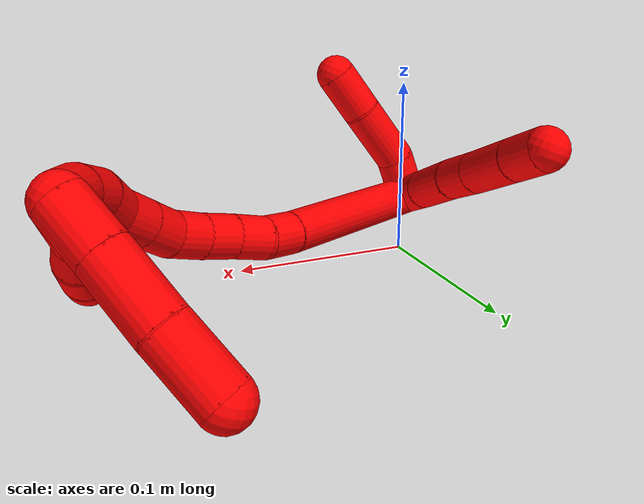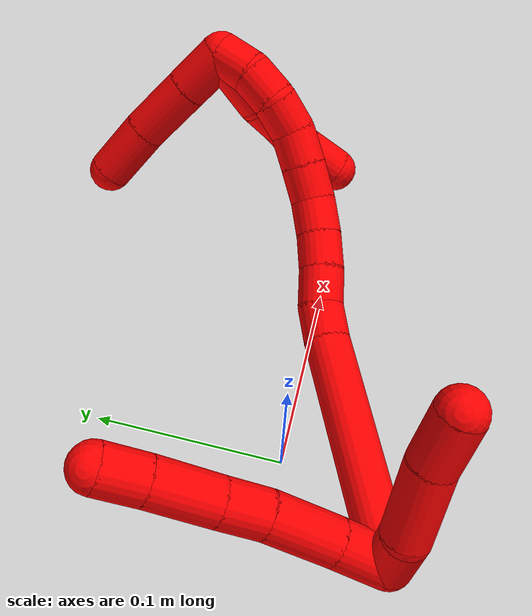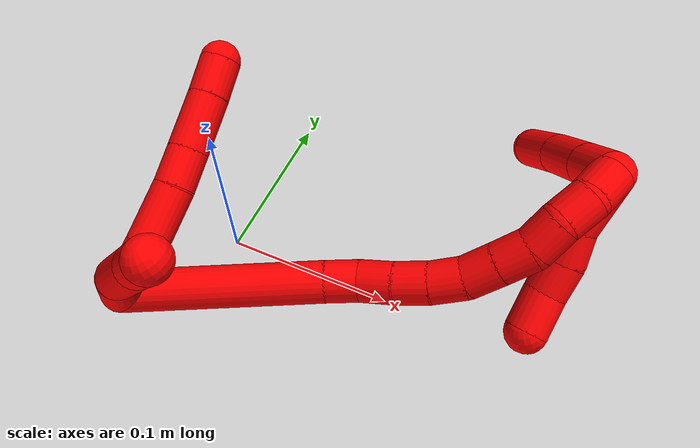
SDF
<sdf version="1.7">
 <world name="default">
  <model name="2">
   <static>0</static>
   <link name="2">
    <collision name="collision-cylinder-e_1_2_8">
     <pose>-0.001503 0.013476 0.005632 -1.17492 -0.102576 0.068337</pose>
     <geometry><cylinder><radius>0.0125</radius><length>0.029365</length></cylinder></geometry>
     <surface>
      <friction><ode><mu>1.16</mu><mu2>1.16</mu2><slip1>0</slip1><slip2>0</slip2></ode></friction>
      <contact><ode><kp>1e+06</kp><kd>1</kd><max_vel>0</max_vel><min_depth>0.001</min_depth></ode></contact>
     </surface>
    </collision>
    <visual name="visual-cylinder-e_1_2_8">
     <pose>-0.001503 0.013476 0.005632 -1.17492 -0.102576 0.068337</pose>
     <geometry><cylinder><radius>0.0125</radius><length>0.029365</length></cylinder></geometry>
     <material><ambient>1 0 0 1</ambient></material>
    </visual>
    <collision name="collision-cylinder-e_2_8_9">
     <pose>-0.005235 0.04386 0.019088 -1.13742 -0.119034 0.076134</pose>
     <geometry><cylinder><radius>0.0125</radius><length>0.037528</length></cylinder></geometry>
     <surface>
      <friction><ode><mu>1.16</mu><mu2>1.16</mu2><slip1>0</slip1><slip2>0</slip2></ode></friction>
      <contact><ode><kp>1e+06</kp><kd>1</kd><max_vel>0</max_vel><min_depth>0.001</min_depth></ode></contact>
     </surface>
    </collision>
    <visual name="visual-cylinder-e_2_8_9">
     <pose>-0.005235 0.04386 0.019088 -1.13742 -0.119034 0.076134</pose>
     <geometry><cylinder><radius>0.0125</radius><length>0.037528</length></cylinder></geometry>
     <material><ambient>1 0 0 1</ambient></material>
    </visual>
    <collision name="collision-cylinder-e_3_9_10">
     <pose>-0.010063 0.071176 0.032015 -1.1149 -0.22061 0.13787</pose>
     <geometry><cylinder><radius>0.0125</radius><length>0.023757</length></cylinder></geometry>
     <surface>
      <friction><ode><mu>1.16</mu><mu2>1.16</mu2><slip1>0</slip1><slip2>0</slip2></ode></friction>
      <contact><ode><kp>1e+06</kp><kd>1</kd><max_vel>0</max_vel><min_depth>0.001</min_depth></ode></contact>
     </surface>
    </collision>
    <visual name="visual-cylinder-e_3_9_10">
     <pose>-0.010063 0.071176 0.032015 -1.1149 -0.22061 0.13787</pose>
     <geometry><cylinder><radius>0.0125</radius><length>0.023757</length></cylinder></geometry>
     <material><ambient>1 0 0 1</ambient></material>
    </visual>
    <collision name="collision-cylinder-e_4_10_11">
     <pose>-0.016083 0.09701 0.045114 -1.0926 -0.194369 0.118417</pose>
     <geometry><cylinder><radius>0.0125</radius><length>0.035418</length></cylinder></geometry>
     <surface>
      <friction><ode><mu>1.16</mu><mu2>1.16</mu2><slip1>0</slip1><slip2>0</slip2></ode></friction>
      <contact><ode><kp>1e+06</kp><kd>1</kd><max_vel>0</max_vel><min_depth>0.001</min_depth></ode></contact>
     </surface>
    </collision>
    <visual name="visual-cylinder-e_4_10_11">
     <pose>-0.016083 0.09701 0.045114 -1.0926 -0.194369 0.118417</pose>
     <geometry><cylinder><radius>0.0125</radius><length>0.035418</length></cylinder></geometry>
     <material><ambient>1 0 0 1</ambient></material>
    </visual>
    <collision name="collision-cylinder-e_5_11_6">
     <pose>-0.02218 0.122655 0.05873 -1.06797 -0.225593 0.133757</pose>
     <geometry><cylinder><radius>0.0125</radius><length>0.023931</length></cylinder></geometry>
     <surface>
      <friction><ode><mu>1.16</mu><mu2>1.16</mu2><slip1>0</slip1><slip2>0</slip2></ode></friction>
      <contact><ode><kp>1e+06</kp><kd>1</kd><max_vel>0</max_vel><min_depth>0.001</min_depth></ode></contact>
     </surface>
    </collision>
    <visual name="visual-cylinder-e_5_11_6">
     <pose>-0.02218 0.122655 0.05873 -1.06797 -0.225593 0.133757</pose>
     <geometry><cylinder><radius>0.0125</radius><length>0.023931</length></cylinder></geometry>
     <material><ambient>1 0 0 1</ambient></material>
    </visual>
    <collision name="collision-cylinder-e_1_2_12">
     <pose>0.00908 0.001141 0.0107 -0.106206 0.700915 -0.038855</pose>
     <geometry><cylinder><radius>0.0125</radius><length>0.02816</length></cylinder></geometry>
     <surface>
      <friction><ode><mu>1.16</mu><mu2>1.16</mu2><slip1>0</slip1><slip2>0</slip2></ode></friction>
      <contact><ode><kp>1e+06</kp><kd>1</kd><max_vel>0</max_vel><min_depth>0.001</min_depth></ode></contact>
     </surface>
    </collision>
    <visual name="visual-cylinder-e_1_2_12">
     <pose>0.00908 0.001141 0.0107 -0.106206 0.700915 -0.038855</pose>
     <geometry><cylinder><radius>0.0125</radius><length>0.02816</length></cylinder></geometry>
     <material><ambient>1 0 0 1</ambient></material>
    </visual>
    <collision name="collision-cylinder-e_2_12_13">
     <pose>0.035576 0.006706 0.032405 -0.382287 0.972891 -0.203954</pose>
     <geometry><cylinder><radius>0.0125</radius><length>0.042142</length></cylinder></geometry>
     <surface>
      <friction><ode><mu>1.16</mu><mu2>1.16</mu2><slip1>0</slip1><slip2>0</slip2></ode></friction>
      <contact><ode><kp>1e+06</kp><kd>1</kd><max_vel>0</max_vel><min_depth>0.001</min_depth></ode></contact>
     </surface>
    </collision>
    <visual name="visual-cylinder-e_2_12_13">
     <pose>0.035576 0.006706 0.032405 -0.382287 0.972891 -0.203954</pose>
     <geometry><cylinder><radius>0.0125</radius><length>0.042142</length></cylinder></geometry>
     <material><ambient>1 0 0 1</ambient></material>
    </visual>
    <collision name="collision-cylinder-e_3_13_5">
     <pose>0.065433 0.012324 0.051428 -0.147748 0.993315 -0.080178</pose>
     <geometry><cylinder><radius>0.0125</radius><length>0.029698</length></cylinder></geometry>
     <surface>
      <friction><ode><mu>1.16</mu><mu2>1.16</mu2><slip1>0</slip1><slip2>0</slip2></ode></friction>
      <contact><ode><kp>1e+06</kp><kd>1</kd><max_vel>0</max_vel><min_depth>0.001</min_depth></ode></contact>
     </surface>
    </collision>
    <visual name="visual-cylinder-e_3_13_5">
     <pose>0.065433 0.012324 0.051428 -0.147748 0.993315 -0.080178</pose>
     <geometry><cylinder><radius>0.0125</radius><length>0.029698</length></cylinder></geometry>
     <material><ambient>1 0 0 1</ambient></material>
    </visual>
    <collision name="collision-cylinder-e_1_2_14">
     <pose>0.038383 0.041376 -0.017161 -1.96396 0.70847 -1.01147</pose>
     <geometry><cylinder><radius>0.0125</radius><length>0.117979</length></cylinder></geometry>
     <surface>
      <friction><ode><mu>1.16</mu><mu2>1.16</mu2><slip1>0</slip1><slip2>0</slip2></ode></friction>
      <contact><ode><kp>1e+06</kp><kd>1</kd><max_vel>0</max_vel><min_depth>0.001</min_depth></ode></contact>
     </surface>
    </collision>
    <visual name="visual-cylinder-e_1_2_14">
     <pose>0.038383 0.041376 -0.017161 -1.96396 0.70847 -1.01147</pose>
     <geometry><cylinder><radius>0.0125</radius><length>0.117979</length></cylinder></geometry>
     <material><ambient>1 0 0 1</ambient></material>
    </visual>
    <collision name="collision-cylinder-e_2_14_15">
     <pose>0.084053 0.089496 -0.036753 -1.91676 0.793662 -1.0757</pose>
     <geometry><cylinder><radius>0.0125</radius><length>0.020444</length></cylinder></geometry>
     <surface>
      <friction><ode><mu>1.16</mu><mu2>1.16</mu2><slip1>0</slip1><slip2>0</slip2></ode></friction>
      <contact><ode><kp>1e+06</kp><kd>1</kd><max_vel>0</max_vel><min_depth>0.001</min_depth></ode></contact>
     </surface>
    </collision>
    <visual name="visual-cylinder-e_2_14_15">
     <pose>0.084053 0.089496 -0.036753 -1.91676 0.793662 -1.0757</pose>
     <geometry><cylinder><radius>0.0125</radius><length>0.020444</length></cylinder></geometry>
     <material><ambient>1 0 0 1</ambient></material>
    </visual>
    <collision name="collision-cylinder-e_3_15_16">
     <pose>0.100272 0.101469 -0.04045 -1.80841 1.02853 -1.24558</pose>
     <geometry><cylinder><radius>0.0125</radius><length>0.020853</length></cylinder></geometry>
     <surface>
      <friction><ode><mu>1.16</mu><mu2>1.16</mu2><slip1>0</slip1><slip2>0</slip2></ode></friction>
      <contact><ode><kp>1e+06</kp><kd>1</kd><max_vel>0</max_vel><min_depth>0.001</min_depth></ode></contact>
     </surface>
    </collision>
    <visual name="visual-cylinder-e_3_15_16">
     <pose>0.100272 0.101469 -0.04045 -1.80841 1.02853 -1.24558</pose>
     <geometry><cylinder><radius>0.0125</radius><length>0.020853</length></cylinder></geometry>
     <material><ambient>1 0 0 1</ambient></material>
    </visual>
    <collision name="collision-cylinder-e_4_16_17">
     <pose>0.117267 0.112584 -0.04296 -1.77898 0.929985 -1.10816</pose>
     <geometry><cylinder><radius>0.0125</radius><length>0.020122</length></cylinder></geometry>
     <surface>
      <friction><ode><mu>1.16</mu><mu2>1.16</mu2><slip1>0</slip1><slip2>0</slip2></ode></friction>
      <contact><ode><kp>1e+06</kp><kd>1</kd><max_vel>0</max_vel><min_depth>0.001</min_depth></ode></contact>
     </surface>
    </collision>
    <visual name="visual-cylinder-e_4_16_17">
     <pose>0.117267 0.112584 -0.04296 -1.77898 0.929985 -1.10816</pose>
     <geometry><cylinder><radius>0.0125</radius><length>0.020122</length></cylinder></geometry>
     <material><ambient>1 0 0 1</ambient></material>
    </visual>
    <collision name="collision-cylinder-e_5_17_18">
     <pose>0.132998 0.125138 -0.044433 -1.60529 0.854541 -0.880856</pose>
     <geometry><cylinder><radius>0.0125</radius><length>0.020325</length></cylinder></geometry>
     <surface>
      <friction><ode><mu>1.16</mu><mu2>1.16</mu2><slip1>0</slip1><slip2>0</slip2></ode></friction>
      <contact><ode><kp>1e+06</kp><kd>1</kd><max_vel>0</max_vel><min_depth>0.001</min_depth></ode></contact>
     </surface>
    </collision>
    <visual name="visual-cylinder-e_5_17_18">
     <pose>0.132998 0.125138 -0.044433 -1.60529 0.854541 -0.880856</pose>
     <geometry><cylinder><radius>0.0125</radius><length>0.020325</length></cylinder></geometry>
     <material><ambient>1 0 0 1</ambient></material>
    </visual>
    <collision name="collision-cylinder-e_6_18_19">
     <pose>0.147343 0.138952 -0.042175 -1.23574 0.723277 -0.525259</pose>
     <geometry><cylinder><radius>0.0125</radius><length>0.020187</length></cylinder></geometry>
     <surface>
      <friction><ode><mu>1.16</mu><mu2>1.16</mu2><slip1>0</slip1><slip2>0</slip2></ode></friction>
      <contact><ode><kp>1e+06</kp><kd>1</kd><max_vel>0</max_vel><min_depth>0.001</min_depth></ode></contact>
     </surface>
    </collision>
    <visual name="visual-cylinder-e_6_18_19">
     <pose>0.147343 0.138952 -0.042175 -1.23574 0.723277 -0.525259</pose>
     <geometry><cylinder><radius>0.0125</radius><length>0.020187</length></cylinder></geometry>
     <material><ambient>1 0 0 1</ambient></material>
    </visual>
    <collision name="collision-cylinder-e_7_19_20">
     <pose>0.160482 0.153327 -0.037196 -1.23897 0.701373 -0.51036</pose>
     <geometry><cylinder><radius>0.0125</radius><length>0.020018</length></cylinder></geometry>
     <surface>
      <friction><ode><mu>1.16</mu><mu2>1.16</mu2><slip1>0</slip1><slip2>0</slip2></ode></friction>
      <contact><ode><kp>1e+06</kp><kd>1</kd><max_vel>0</max_vel><min_depth>0.001</min_depth></ode></contact>
     </surface>
    </collision>
    <visual name="visual-cylinder-e_7_19_20">
     <pose>0.160482 0.153327 -0.037196 -1.23897 0.701373 -0.51036</pose>
     <geometry><cylinder><radius>0.0125</radius><length>0.020018</length></cylinder></geometry>
     <material><ambient>1 0 0 1</ambient></material>
    </visual>
    <collision name="collision-cylinder-e_8_20_21">
     <pose>0.170915 0.168576 -0.030226 -1.06135 0.408283 -0.241791</pose>
     <geometry><cylinder><radius>0.0125</radius><length>0.020016</length></cylinder></geometry>
     <surface>
      <friction><ode><mu>1.16</mu><mu2>1.16</mu2><slip1>0</slip1><slip2>0</slip2></ode></friction>
      <contact><ode><kp>1e+06</kp><kd>1</kd><max_vel>0</max_vel><min_depth>0.001</min_depth></ode></contact>
     </surface>
    </collision>
    <visual name="visual-cylinder-e_8_20_21">
     <pose>0.170915 0.168576 -0.030226 -1.06135 0.408283 -0.241791</pose>
     <geometry><cylinder><radius>0.0125</radius><length>0.020016</length></cylinder></geometry>
     <material><ambient>1 0 0 1</ambient></material>
    </visual>
    <collision name="collision-cylinder-e_9_21_22">
     <pose>0.177915 0.185989 -0.024122 -1.39963 0.30744 -0.259449</pose>
     <geometry><cylinder><radius>0.0125</radius><length>0.020005</length></cylinder></geometry>
     <surface>
      <friction><ode><mu>1.16</mu><mu2>1.16</mu2><slip1>0</slip1><slip2>0</slip2></ode></friction>
      <contact><ode><kp>1e+06</kp><kd>1</kd><max_vel>0</max_vel><min_depth>0.001</min_depth></ode></contact>
     </surface>
    </collision>
    <visual name="visual-cylinder-e_9_21_22">
     <pose>0.177915 0.185989 -0.024122 -1.39963 0.30744 -0.259449</pose>
     <geometry><cylinder><radius>0.0125</radius><length>0.020005</length></cylinder></geometry>
     <material><ambient>1 0 0 1</ambient></material>
    </visual>
    <collision name="collision-cylinder-e_10_22_1">
     <pose>0.18146 0.205392 -0.022252 -1.54623 0.051672 -0.050418</pose>
     <geometry><cylinder><radius>0.0125</radius><length>0.02005</length></cylinder></geometry>
     <surface>
      <friction><ode><mu>1.16</mu><mu2>1.16</mu2><slip1>0</slip1><slip2>0</slip2></ode></friction>
      <contact><ode><kp>1e+06</kp><kd>1</kd><max_vel>0</max_vel><min_depth>0.001</min_depth></ode></contact>
     </surface>
    </collision>
    <visual name="visual-cylinder-e_10_22_1">
     <pose>0.18146 0.205392 -0.022252 -1.54623 0.051672 -0.050418</pose>
     <geometry><cylinder><radius>0.0125</radius><length>0.02005</length></cylinder></geometry>
     <material><ambient>1 0 0 1</ambient></material>
    </visual>
    <collision name="collision-cylinder-e_1_1_23">
     <pose>0.170198 0.220693 -0.027512 -2.3759 -0.995553 1.86606</pose>
     <geometry><cylinder><radius>0.0125</radius><length>0.028077</length></cylinder></geometry>
     <surface>
      <friction><ode><mu>1.16</mu><mu2>1.16</mu2><slip1>0</slip1><slip2>0</slip2></ode></friction>
      <contact><ode><kp>1e+06</kp><kd>1</kd><max_vel>0</max_vel><min_depth>0.001</min_depth></ode></contact>
     </surface>
    </collision>
    <visual name="visual-cylinder-e_1_1_23">
     <pose>0.170198 0.220693 -0.027512 -2.3759 -0.995553 1.86606</pose>
     <geometry><cylinder><radius>0.0125</radius><length>0.028077</length></cylinder></geometry>
     <material><ambient>1 0 0 1</ambient></material>
    </visual>
    <collision name="collision-cylinder-e_2_23_24">
     <pose>0.143051 0.232982 -0.040511 -2.39048 -0.982536 1.87143</pose>
     <geometry><cylinder><radius>0.0125</radius><length>0.036947</length></cylinder></geometry>
     <surface>
      <friction><ode><mu>1.16</mu><mu2>1.16</mu2><slip1>0</slip1><slip2>0</slip2></ode></friction>
      <contact><ode><kp>1e+06</kp><kd>1</kd><max_vel>0</max_vel><min_depth>0.001</min_depth></ode></contact>
     </surface>
    </collision>
    <visual name="visual-cylinder-e_2_23_24">
     <pose>0.143051 0.232982 -0.040511 -2.39048 -0.982536 1.87143</pose>
     <geometry><cylinder><radius>0.0125</radius><length>0.036947</length></cylinder></geometry>
     <material><ambient>1 0 0 1</ambient></material>
    </visual>
    <collision name="collision-cylinder-e_3_24_4">
     <pose>0.112647 0.245371 -0.055124 -2.49336 -1.0348 2.07503</pose>
     <geometry><cylinder><radius>0.0125</radius><length>0.034975</length></cylinder></geometry>
     <surface>
      <friction><ode><mu>1.16</mu><mu2>1.16</mu2><slip1>0</slip1><slip2>0</slip2></ode></friction>
      <contact><ode><kp>1e+06</kp><kd>1</kd><max_vel>0</max_vel><min_depth>0.001</min_depth></ode></contact>
     </surface>
    </collision>
    <visual name="visual-cylinder-e_3_24_4">
     <pose>0.112647 0.245371 -0.055124 -2.49336 -1.0348 2.07503</pose>
     <geometry><cylinder><radius>0.0125</radius><length>0.034975</length></cylinder></geometry>
     <material><ambient>1 0 0 1</ambient></material>
    </visual>
    <collision name="collision-cylinder-e_1_1_25">
     <pose>0.177673 0.201904 -0.032274 2.22118 -0.248567 -0.493756</pose>
     <geometry><cylinder><radius>0.0125</radius><length>0.034991</length></cylinder></geometry>
     <surface>
      <friction><ode><mu>1.16</mu><mu2>1.16</mu2><slip1>0</slip1><slip2>0</slip2></ode></friction>
      <contact><ode><kp>1e+06</kp><kd>1</kd><max_vel>0</max_vel><min_depth>0.001</min_depth></ode></contact>
     </surface>
    </collision>
    <visual name="visual-cylinder-e_1_1_25">
     <pose>0.177673 0.201904 -0.032274 2.22118 -0.248567 -0.493756</pose>
     <geometry><cylinder><radius>0.0125</radius><length>0.034991</length></cylinder></geometry>
     <material><ambient>1 0 0 1</ambient></material>
    </visual>
    <collision name="collision-cylinder-e_2_25_26">
     <pose>0.173082 0.181547 -0.049974 2.39612 -0.02843 -0.072682</pose>
     <geometry><cylinder><radius>0.0125</radius><length>0.020237</length></cylinder></geometry>
     <surface>
      <friction><ode><mu>1.16</mu><mu2>1.16</mu2><slip1>0</slip1><slip2>0</slip2></ode></friction>
      <contact><ode><kp>1e+06</kp><kd>1</kd><max_vel>0</max_vel><min_depth>0.001</min_depth></ode></contact>
     </surface>
    </collision>
    <visual name="visual-cylinder-e_2_25_26">
     <pose>0.173082 0.181547 -0.049974 2.39612 -0.02843 -0.072682</pose>
     <geometry><cylinder><radius>0.0125</radius><length>0.020237</length></cylinder></geometry>
     <material><ambient>1 0 0 1</ambient></material>
    </visual>
    <collision name="collision-cylinder-e_3_26_27">
     <pose>0.171145 0.166535 -0.063425 2.20681 -0.16131 -0.317621</pose>
     <geometry><cylinder><radius>0.0125</radius><length>0.020532</length></cylinder></geometry>
     <surface>
      <friction><ode><mu>1.16</mu><mu2>1.16</mu2><slip1>0</slip1><slip2>0</slip2></ode></friction>
      <contact><ode><kp>1e+06</kp><kd>1</kd><max_vel>0</max_vel><min_depth>0.001</min_depth></ode></contact>
     </surface>
    </collision>
    <visual name="visual-cylinder-e_3_26_27">
     <pose>0.171145 0.166535 -0.063425 2.20681 -0.16131 -0.317621</pose>
     <geometry><cylinder><radius>0.0125</radius><length>0.020532</length></cylinder></geometry>
     <material><ambient>1 0 0 1</ambient></material>
    </visual>
    <collision name="collision-cylinder-e_4_27_3">
     <pose>0.169547 0.147528 -0.074833 2.03159 0.00422 0.006806</pose>
     <geometry><cylinder><radius>0.0125</radius><length>0.024239</length></cylinder></geometry>
     <surface>
      <friction><ode><mu>1.16</mu><mu2>1.16</mu2><slip1>0</slip1><slip2>0</slip2></ode></friction>
      <contact><ode><kp>1e+06</kp><kd>1</kd><max_vel>0</max_vel><min_depth>0.001</min_depth></ode></contact>
     </surface>
    </collision>
    <visual name="visual-cylinder-e_4_27_3">
     <pose>0.169547 0.147528 -0.074833 2.03159 0.00422 0.006806</pose>
     <geometry><cylinder><radius>0.0125</radius><length>0.024239</length></cylinder></geometry>
     <material><ambient>1 0 0 1</ambient></material>
    </visual>
    <collision name="collision-sphere-3">
     <pose>0.169598 0.136672 -0.080222 0 -0 0</pose>
     <geometry><sphere><radius>0.0125</radius></sphere></geometry>
     <surface>
      <friction><ode><mu>1.16</mu><mu2>1.16</mu2><slip1>0</slip1><slip2>0</slip2></ode></friction>
      <contact><ode><kp>1e+06</kp><kd>1</kd><max_vel>0</max_vel><min_depth>0.001</min_depth></ode></contact>
     </surface>
    </collision>
    <visual name="visual-sphere-3">
     <pose>0.169598 0.136672 -0.080222 0 -0 0</pose>
     <geometry><sphere><radius>0.0125</radius></sphere></geometry>
     <material><ambient>1 0 0 1</ambient></material>
    </visual>
    <collision name="collision-sphere-27">
     <pose>0.169496 0.158383 -0.069444 0 -0 0</pose>
     <geometry><sphere><radius>0.0125</radius></sphere></geometry>
     <surface>
      <friction><ode><mu>1.16</mu><mu2>1.16</mu2><slip1>0</slip1><slip2>0</slip2></ode></friction>
      <contact><ode><kp>1e+06</kp><kd>1</kd><max_vel>0</max_vel><min_depth>0.001</min_depth></ode></contact>
     </surface>
    </collision>
    <visual name="visual-sphere-27">
     <pose>0.169496 0.158383 -0.069444 0 -0 0</pose>
     <geometry><sphere><radius>0.0125</radius></sphere></geometry>
     <material><ambient>1 0 0 1</ambient></material>
    </visual>
    <collision name="collision-sphere-26">
     <pose>0.172794 0.174687 -0.057406 0 -0 0</pose>
     <geometry><sphere><radius>0.0125</radius></sphere></geometry>
     <surface>
      <friction><ode><mu>1.16</mu><mu2>1.16</mu2><slip1>0</slip1><slip2>0</slip2></ode></friction>
      <contact><ode><kp>1e+06</kp><kd>1</kd><max_vel>0</max_vel><min_depth>0.001</min_depth></ode></contact>
     </surface>
    </collision>
    <visual name="visual-sphere-26">
     <pose>0.172794 0.174687 -0.057406 0 -0 0</pose>
     <geometry><sphere><radius>0.0125</radius></sphere></geometry>
     <material><ambient>1 0 0 1</ambient></material>
    </visual>
    <collision name="collision-sphere-25">
     <pose>0.173369 0.188408 -0.042542 0 -0 0</pose>
     <geometry><sphere><radius>0.0125</radius></sphere></geometry>
     <surface>
      <friction><ode><mu>1.16</mu><mu2>1.16</mu2><slip1>0</slip1><slip2>0</slip2></ode></friction>
      <contact><ode><kp>1e+06</kp><kd>1</kd><max_vel>0</max_vel><min_depth>0.001</min_depth></ode></contact>
     </surface>
    </collision>
    <visual name="visual-sphere-25">
     <pose>0.173369 0.188408 -0.042542 0 -0 0</pose>
     <geometry><sphere><radius>0.0125</radius></sphere></geometry>
     <material><ambient>1 0 0 1</ambient></material>
    </visual>
    <collision name="collision-sphere-4">
     <pose>0.097612 0.250763 -0.062243 0 -0 0</pose>
     <geometry><sphere><radius>0.0125</radius></sphere></geometry>
     <surface>
      <friction><ode><mu>1.16</mu><mu2>1.16</mu2><slip1>0</slip1><slip2>0</slip2></ode></friction>
      <contact><ode><kp>1e+06</kp><kd>1</kd><max_vel>0</max_vel><min_depth>0.001</min_depth></ode></contact>
     </surface>
    </collision>
    <visual name="visual-sphere-4">
     <pose>0.097612 0.250763 -0.062243 0 -0 0</pose>
     <geometry><sphere><radius>0.0125</radius></sphere></geometry>
     <material><ambient>1 0 0 1</ambient></material>
    </visual>
    <collision name="collision-sphere-24">
     <pose>0.127682 0.239978 -0.048004 0 -0 0</pose>
     <geometry><sphere><radius>0.0125</radius></sphere></geometry>
     <surface>
      <friction><ode><mu>1.16</mu><mu2>1.16</mu2><slip1>0</slip1><slip2>0</slip2></ode></friction>
      <contact><ode><kp>1e+06</kp><kd>1</kd><max_vel>0</max_vel><min_depth>0.001</min_depth></ode></contact>
     </surface>
    </collision>
    <visual name="visual-sphere-24">
     <pose>0.127682 0.239978 -0.048004 0 -0 0</pose>
     <geometry><sphere><radius>0.0125</radius></sphere></geometry>
     <material><ambient>1 0 0 1</ambient></material>
    </visual>
    <collision name="collision-sphere-23">
     <pose>0.158419 0.225986 -0.033018 0 -0 0</pose>
     <geometry><sphere><radius>0.0125</radius></sphere></geometry>
     <surface>
      <friction><ode><mu>1.16</mu><mu2>1.16</mu2><slip1>0</slip1><slip2>0</slip2></ode></friction>
      <contact><ode><kp>1e+06</kp><kd>1</kd><max_vel>0</max_vel><min_depth>0.001</min_depth></ode></contact>
     </surface>
    </collision>
    <visual name="visual-sphere-23">
     <pose>0.158419 0.225986 -0.033018 0 -0 0</pose>
     <geometry><sphere><radius>0.0125</radius></sphere></geometry>
     <material><ambient>1 0 0 1</ambient></material>
    </visual>
    <collision name="collision-sphere-1">
     <pose>0.181978 0.2154 -0.022007 0 -0 0</pose>
     <geometry><sphere><radius>0.0125</radius></sphere></geometry>
     <surface>
      <friction><ode><mu>1.16</mu><mu2>1.16</mu2><slip1>0</slip1><slip2>0</slip2></ode></friction>
      <contact><ode><kp>1e+06</kp><kd>1</kd><max_vel>0</max_vel><min_depth>0.001</min_depth></ode></contact>
     </surface>
    </collision>
    <visual name="visual-sphere-1">
     <pose>0.181978 0.2154 -0.022007 0 -0 0</pose>
     <geometry><sphere><radius>0.0125</radius></sphere></geometry>
     <material><ambient>1 0 0 1</ambient></material>
    </visual>
    <collision name="collision-sphere-22">
     <pose>0.180942 0.195383 -0.022498 0 -0 0</pose>
     <geometry><sphere><radius>0.0125</radius></sphere></geometry>
     <surface>
      <friction><ode><mu>1.16</mu><mu2>1.16</mu2><slip1>0</slip1><slip2>0</slip2></ode></friction>
      <contact><ode><kp>1e+06</kp><kd>1</kd><max_vel>0</max_vel><min_depth>0.001</min_depth></ode></contact>
     </surface>
    </collision>
    <visual name="visual-sphere-22">
     <pose>0.180942 0.195383 -0.022498 0 -0 0</pose>
     <geometry><sphere><radius>0.0125</radius></sphere></geometry>
     <material><ambient>1 0 0 1</ambient></material>
    </visual>
    <collision name="collision-sphere-21">
     <pose>0.174888 0.176595 -0.025746 0 -0 0</pose>
     <geometry><sphere><radius>0.0125</radius></sphere></geometry>
     <surface>
      <friction><ode><mu>1.16</mu><mu2>1.16</mu2><slip1>0</slip1><slip2>0</slip2></ode></friction>
      <contact><ode><kp>1e+06</kp><kd>1</kd><max_vel>0</max_vel><min_depth>0.001</min_depth></ode></contact>
     </surface>
    </collision>
    <visual name="visual-sphere-21">
     <pose>0.174888 0.176595 -0.025746 0 -0 0</pose>
     <geometry><sphere><radius>0.0125</radius></sphere></geometry>
     <material><ambient>1 0 0 1</ambient></material>
    </visual>
    <collision name="collision-sphere-6">
     <pose>-0.024856 0.132874 0.06435 0 -0 0</pose>
     <geometry><sphere><radius>0.0125</radius></sphere></geometry>
     <surface>
      <friction><ode><mu>1.16</mu><mu2>1.16</mu2><slip1>0</slip1><slip2>0</slip2></ode></friction>
      <contact><ode><kp>1e+06</kp><kd>1</kd><max_vel>0</max_vel><min_depth>0.001</min_depth></ode></contact>
     </surface>
    </collision>
    <visual name="visual-sphere-6">
     <pose>-0.024856 0.132874 0.06435 0 -0 0</pose>
     <geometry><sphere><radius>0.0125</radius></sphere></geometry>
     <material><ambient>1 0 0 1</ambient></material>
    </visual>
    <collision name="collision-sphere-11">
     <pose>-0.019503 0.112436 0.05311 0 -0 0</pose>
     <geometry><sphere><radius>0.0125</radius></sphere></geometry>
     <surface>
      <friction><ode><mu>1.16</mu><mu2>1.16</mu2><slip1>0</slip1><slip2>0</slip2></ode></friction>
      <contact><ode><kp>1e+06</kp><kd>1</kd><max_vel>0</max_vel><min_depth>0.001</min_depth></ode></contact>
     </surface>
    </collision>
    <visual name="visual-sphere-11">
     <pose>-0.019503 0.112436 0.05311 0 -0 0</pose>
     <geometry><sphere><radius>0.0125</radius></sphere></geometry>
     <material><ambient>1 0 0 1</ambient></material>
    </visual>
    <collision name="collision-sphere-10">
     <pose>-0.012662 0.081583 0.037118 0 -0 0</pose>
     <geometry><sphere><radius>0.0125</radius></sphere></geometry>
     <surface>
      <friction><ode><mu>1.16</mu><mu2>1.16</mu2><slip1>0</slip1><slip2>0</slip2></ode></friction>
      <contact><ode><kp>1e+06</kp><kd>1</kd><max_vel>0</max_vel><min_depth>0.001</min_depth></ode></contact>
     </surface>
    </collision>
    <visual name="visual-sphere-10">
     <pose>-0.012662 0.081583 0.037118 0 -0 0</pose>
     <geometry><sphere><radius>0.0125</radius></sphere></geometry>
     <material><ambient>1 0 0 1</ambient></material>
    </visual>
    <collision name="collision-sphere-9">
     <pose>-0.007463 0.060769 0.026912 0 -0 0</pose>
     <geometry><sphere><radius>0.0125</radius></sphere></geometry>
     <surface>
      <friction><ode><mu>1.16</mu><mu2>1.16</mu2><slip1>0</slip1><slip2>0</slip2></ode></friction>
      <contact><ode><kp>1e+06</kp><kd>1</kd><max_vel>0</max_vel><min_depth>0.001</min_depth></ode></contact>
     </surface>
    </collision>
    <visual name="visual-sphere-9">
     <pose>-0.007463 0.060769 0.026912 0 -0 0</pose>
     <geometry><sphere><radius>0.0125</radius></sphere></geometry>
     <material><ambient>1 0 0 1</ambient></material>
    </visual>
    <collision name="collision-sphere-2">
     <geometry><sphere><radius>0.0125</radius></sphere></geometry>
     <surface>
      <friction><ode><mu>1.16</mu><mu2>1.16</mu2><slip1>0</slip1><slip2>0</slip2></ode></friction>
      <contact><ode><kp>1e+06</kp><kd>1</kd><max_vel>0</max_vel><min_depth>0.001</min_depth></ode></contact>
     </surface>
    </collision>
    <visual name="visual-sphere-2">
     <geometry><sphere><radius>0.0125</radius></sphere></geometry>
     <material><ambient>1 0 0 1</ambient></material>
    </visual>
    <collision name="collision-sphere-19">
     <pose>0.154024 0.146098 -0.039687 0 -0 0</pose>
     <geometry><sphere><radius>0.0125</radius></sphere></geometry>
     <surface>
      <friction><ode><mu>1.16</mu><mu2>1.16</mu2><slip1>0</slip1><slip2>0</slip2></ode></friction>
      <contact><ode><kp>1e+06</kp><kd>1</kd><max_vel>0</max_vel><min_depth>0.001</min_depth></ode></contact>
     </surface>
    </collision>
    <visual name="visual-sphere-19">
     <pose>0.154024 0.146098 -0.039687 0 -0 0</pose>
     <geometry><sphere><radius>0.0125</radius></sphere></geometry>
     <material><ambient>1 0 0 1</ambient></material>
    </visual>
    <collision name="collision-sphere-8">
     <pose>-0.003007 0.026952 0.011264 0 -0 0</pose>
     <geometry><sphere><radius>0.0125</radius></sphere></geometry>
     <surface>
      <friction><ode><mu>1.16</mu><mu2>1.16</mu2><slip1>0</slip1><slip2>0</slip2></ode></friction>
      <contact><ode><kp>1e+06</kp><kd>1</kd><max_vel>0</max_vel><min_depth>0.001</min_depth></ode></contact>
     </surface>
    </collision>
    <visual name="visual-sphere-8">
     <pose>-0.003007 0.026952 0.011264 0 -0 0</pose>
     <geometry><sphere><radius>0.0125</radius></sphere></geometry>
     <material><ambient>1 0 0 1</ambient></material>
    </visual>
    <collision name="collision-sphere-12">
     <pose>0.018161 0.002281 0.0214 0 -0 0</pose>
     <geometry><sphere><radius>0.0125</radius></sphere></geometry>
     <surface>
      <friction><ode><mu>1.16</mu><mu2>1.16</mu2><slip1>0</slip1><slip2>0</slip2></ode></friction>
      <contact><ode><kp>1e+06</kp><kd>1</kd><max_vel>0</max_vel><min_depth>0.001</min_depth></ode></contact>
     </surface>
    </collision>
    <visual name="visual-sphere-12">
     <pose>0.018161 0.002281 0.0214 0 -0 0</pose>
     <geometry><sphere><radius>0.0125</radius></sphere></geometry>
     <material><ambient>1 0 0 1</ambient></material>
    </visual>
    <collision name="collision-sphere-13">
     <pose>0.052992 0.011131 0.04341 0 -0 0</pose>
     <geometry><sphere><radius>0.0125</radius></sphere></geometry>
     <surface>
      <friction><ode><mu>1.16</mu><mu2>1.16</mu2><slip1>0</slip1><slip2>0</slip2></ode></friction>
      <contact><ode><kp>1e+06</kp><kd>1</kd><max_vel>0</max_vel><min_depth>0.001</min_depth></ode></contact>
     </surface>
    </collision>
    <visual name="visual-sphere-13">
     <pose>0.052992 0.011131 0.04341 0 -0 0</pose>
     <geometry><sphere><radius>0.0125</radius></sphere></geometry>
     <material><ambient>1 0 0 1</ambient></material>
    </visual>
    <collision name="collision-sphere-5">
     <pose>0.077874 0.013517 0.059446 0 -0 0</pose>
     <geometry><sphere><radius>0.0125</radius></sphere></geometry>
     <surface>
      <friction><ode><mu>1.16</mu><mu2>1.16</mu2><slip1>0</slip1><slip2>0</slip2></ode></friction>
      <contact><ode><kp>1e+06</kp><kd>1</kd><max_vel>0</max_vel><min_depth>0.001</min_depth></ode></contact>
     </surface>
    </collision>
    <visual name="visual-sphere-5">
     <pose>0.077874 0.013517 0.059446 0 -0 0</pose>
     <geometry><sphere><radius>0.0125</radius></sphere></geometry>
     <material><ambient>1 0 0 1</ambient></material>
    </visual>
    <collision name="collision-sphere-14">
     <pose>0.076766 0.082753 -0.034322 0 -0 0</pose>
     <geometry><sphere><radius>0.0125</radius></sphere></geometry>
     <surface>
      <friction><ode><mu>1.16</mu><mu2>1.16</mu2><slip1>0</slip1><slip2>0</slip2></ode></friction>
      <contact><ode><kp>1e+06</kp><kd>1</kd><max_vel>0</max_vel><min_depth>0.001</min_depth></ode></contact>
     </surface>
    </collision>
    <visual name="visual-sphere-14">
     <pose>0.076766 0.082753 -0.034322 0 -0 0</pose>
     <geometry><sphere><radius>0.0125</radius></sphere></geometry>
     <material><ambient>1 0 0 1</ambient></material>
    </visual>
    <collision name="collision-sphere-15">
     <pose>0.091341 0.09624 -0.039184 0 -0 0</pose>
     <geometry><sphere><radius>0.0125</radius></sphere></geometry>
     <surface>
      <friction><ode><mu>1.16</mu><mu2>1.16</mu2><slip1>0</slip1><slip2>0</slip2></ode></friction>
      <contact><ode><kp>1e+06</kp><kd>1</kd><max_vel>0</max_vel><min_depth>0.001</min_depth></ode></contact>
     </surface>
    </collision>
    <visual name="visual-sphere-15">
     <pose>0.091341 0.09624 -0.039184 0 -0 0</pose>
     <geometry><sphere><radius>0.0125</radius></sphere></geometry>
     <material><ambient>1 0 0 1</ambient></material>
    </visual>
    <collision name="collision-sphere-16">
     <pose>0.109202 0.106699 -0.041717 0 -0 0</pose>
     <geometry><sphere><radius>0.0125</radius></sphere></geometry>
     <surface>
      <friction><ode><mu>1.16</mu><mu2>1.16</mu2><slip1>0</slip1><slip2>0</slip2></ode></friction>
      <contact><ode><kp>1e+06</kp><kd>1</kd><max_vel>0</max_vel><min_depth>0.001</min_depth></ode></contact>
     </surface>
    </collision>
    <visual name="visual-sphere-16">
     <pose>0.109202 0.106699 -0.041717 0 -0 0</pose>
     <geometry><sphere><radius>0.0125</radius></sphere></geometry>
     <material><ambient>1 0 0 1</ambient></material>
    </visual>
    <collision name="collision-sphere-17">
     <pose>0.125332 0.118469 -0.044203 0 -0 0</pose>
     <geometry><sphere><radius>0.0125</radius></sphere></geometry>
     <surface>
      <friction><ode><mu>1.16</mu><mu2>1.16</mu2><slip1>0</slip1><slip2>0</slip2></ode></friction>
      <contact><ode><kp>1e+06</kp><kd>1</kd><max_vel>0</max_vel><min_depth>0.001</min_depth></ode></contact>
     </surface>
    </collision>
    <visual name="visual-sphere-17">
     <pose>0.125332 0.118469 -0.044203 0 -0 0</pose>
     <geometry><sphere><radius>0.0125</radius></sphere></geometry>
     <material><ambient>1 0 0 1</ambient></material>
    </visual>
    <collision name="collision-sphere-18">
     <pose>0.140663 0.131806 -0.044664 0 -0 0</pose>
     <geometry><sphere><radius>0.0125</radius></sphere></geometry>
     <surface>
      <friction><ode><mu>1.16</mu><mu2>1.16</mu2><slip1>0</slip1><slip2>0</slip2></ode></friction>
      <contact><ode><kp>1e+06</kp><kd>1</kd><max_vel>0</max_vel><min_depth>0.001</min_depth></ode></contact>
     </surface>
    </collision>
    <visual name="visual-sphere-18">
     <pose>0.140663 0.131806 -0.044664 0 -0 0</pose>
     <geometry><sphere><radius>0.0125</radius></sphere></geometry>
     <material><ambient>1 0 0 1</ambient></material>
    </visual>
    <collision name="collision-sphere-20">
     <pose>0.166941 0.160557 -0.034705 0 -0 0</pose>
     <geometry><sphere><radius>0.0125</radius></sphere></geometry>
     <surface>
      <friction><ode><mu>1.16</mu><mu2>1.16</mu2><slip1>0</slip1><slip2>0</slip2></ode></friction>
      <contact><ode><kp>1e+06</kp><kd>1</kd><max_vel>0</max_vel><min_depth>0.001</min_depth></ode></contact>
     </surface>
    </collision>
    <visual name="visual-sphere-20">
     <pose>0.166941 0.160557 -0.034705 0 -0 0</pose>
     <geometry><sphere><radius>0.0125</radius></sphere></geometry>
     <material><ambient>1 0 0 1</ambient></material>
    </visual>
    <inertial>
     <pose>0.084895 0.110172 -0.013508 0 -0 0</pose>
     <mass>0.75</mass>
     <inertia>
      <ixx>1.7e-05</ixx>
      <ixy>0</ixy>
      <ixz>0</ixz>
      <iyy>1.1e-05</iyy>
      <iyz>0</iyz>
      <izz>-0.000219</izz>
     </inertia>
    </inertial>
   </link>
   <pose>-0.039147 -0.061451 0.011494 0.093105 -0.377069 -0.356864</pose>
  </model>
 </world>
</sdf>
